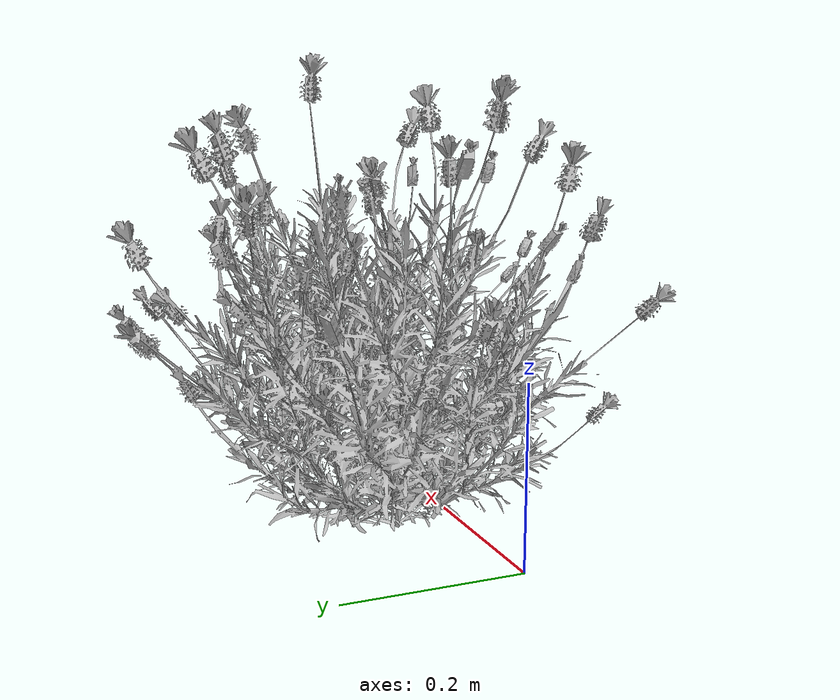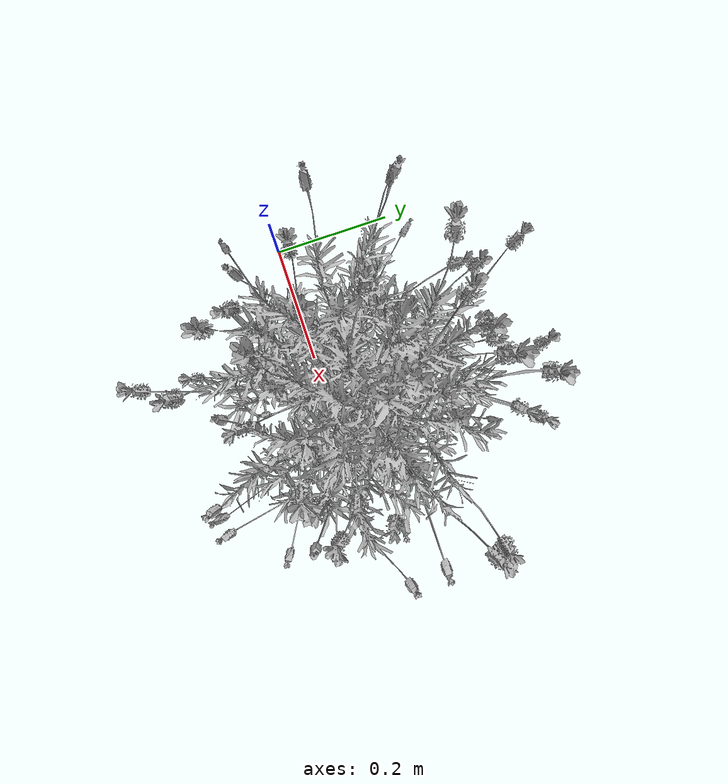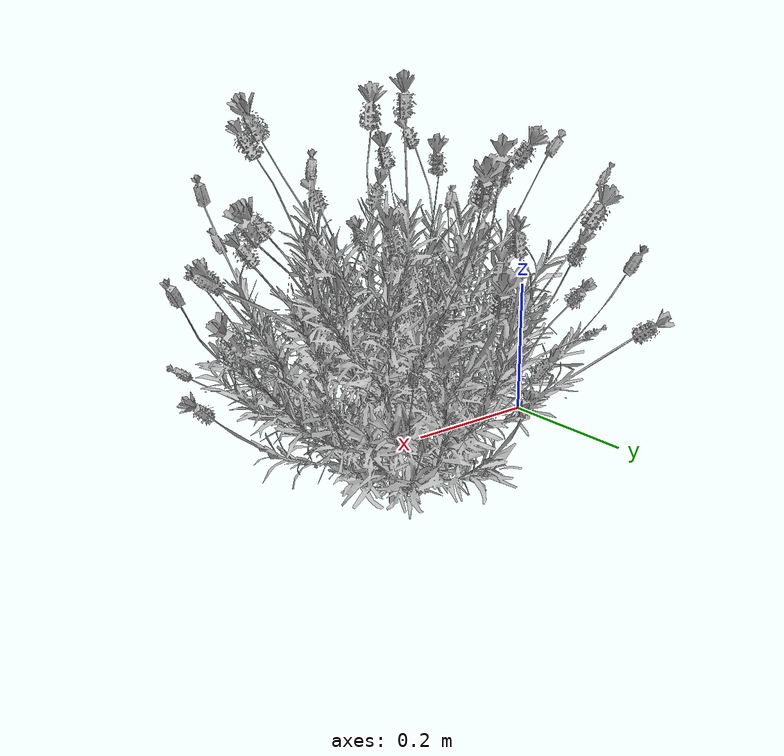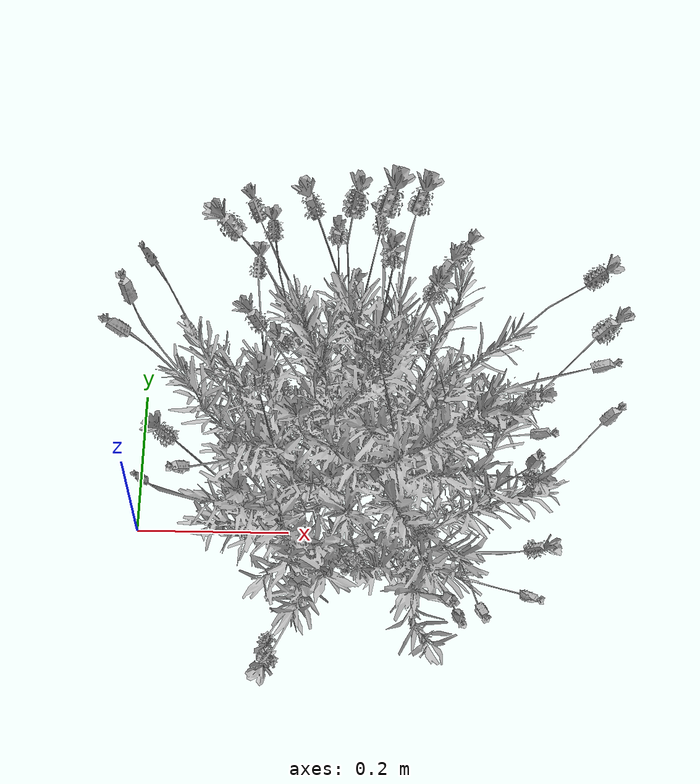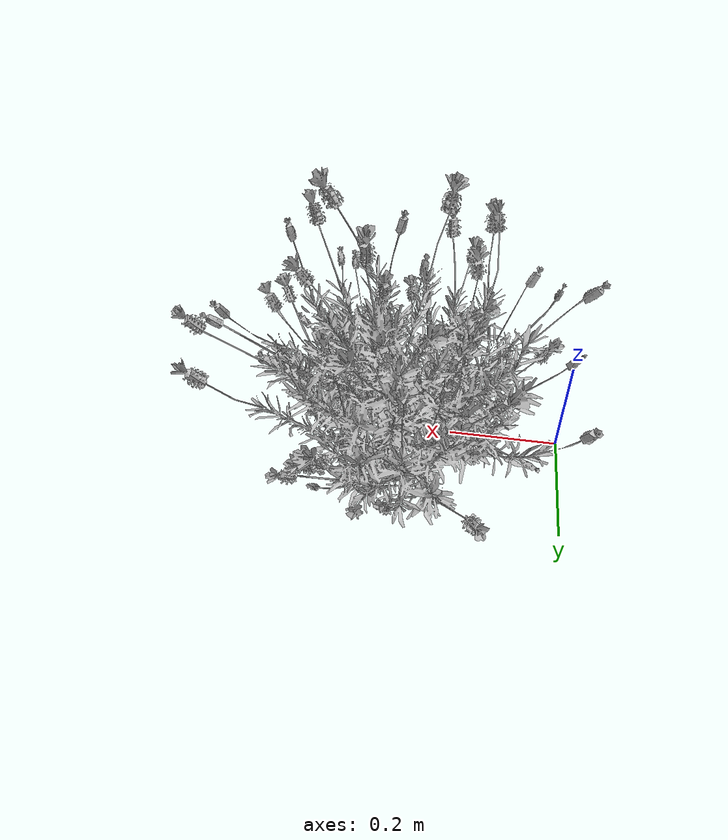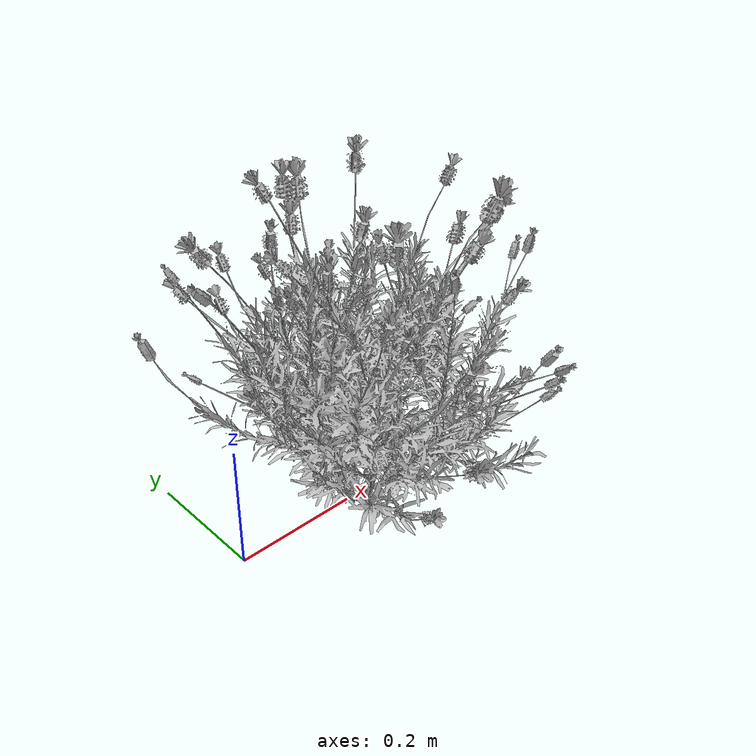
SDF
<sdf version="1.9">
  <model name="lavander">
    <static>true</static>
    <link name="lavander_link">
      <visual name="lavander_visual">
        <plugin filename="gz-sim-label-system" name="gz::sim::systems::Label">
          <label>10</label>
        </plugin>
        <geometry>
          <mesh>
            <uri>meshes/lavander/lavander.dae</uri>
          </mesh>
        </geometry>
      </visual>
      <collision name="lavander_collision">
        <geometry>
          <mesh>
            <uri>meshes/lavander/lavander.dae</uri>
          </mesh>
        </geometry>
      </collision>
    </link>
    <pose>0 0 0 0 0 0</pose>
  </model>
</sdf>
